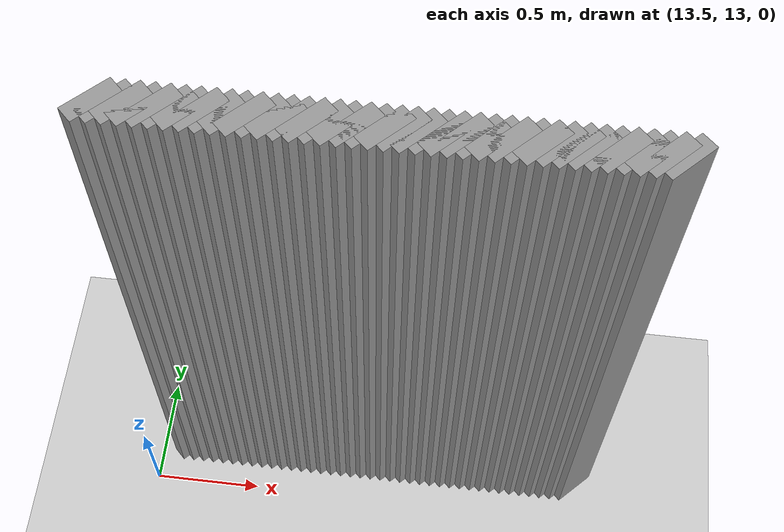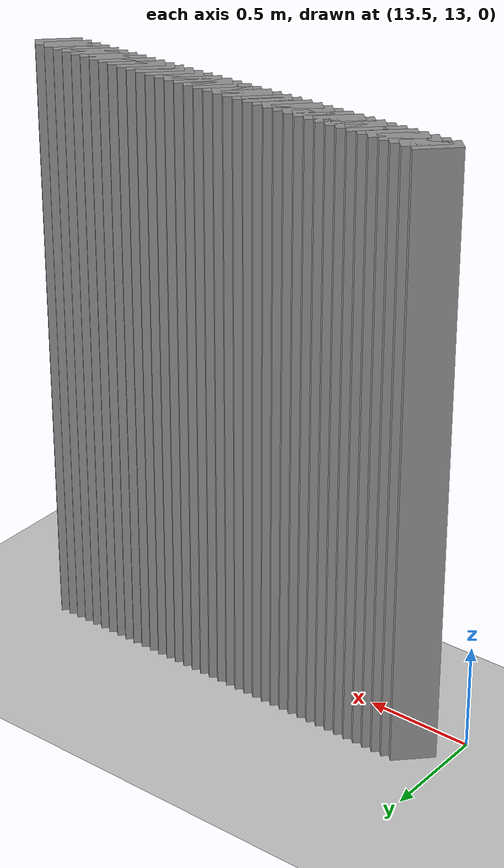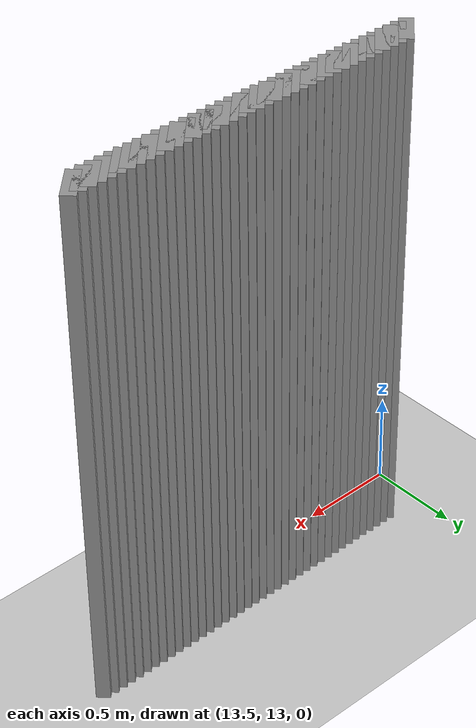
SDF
<sdf version="1.5">
 <world name="default">
  <include><uri>model://ground_plane</uri></include>
  <include><uri>model://sun</uri></include>
  <model name="grey_wall_1931">
   <static>1</static>
   <link name="link">
    <pose>13.65 13.2  1.4 0 0 -0.785398163397</pose>
    <collision name="collision"><geometry><box><size>0.0707106781187 .2  2.8</size></box></geometry></collision>
    <visual name="visual">
     <cast_shadows>0</cast_shadows>
     <geometry><box><size>0.0707106781187 .2  2.8</size></box></geometry>
     <material>
      <script>
       <uri>model://grey_wall/materials/scripts</uri>
       <uri>model://grey_wall/materials/textures</uri>
       <name>vrc/grey_wall</name>
      </script>
     </material>
    </visual>
   </link>
  </model>
  <model name="grey_wall_1932">
   <static>1</static>
   <link name="link">
    <pose>13.7 13.2  1.4 0 0 -0.785398163397</pose>
    <collision name="collision"><geometry><box><size>0.0707106781187 .2  2.8</size></box></geometry></collision>
    <visual name="visual">
     <cast_shadows>0</cast_shadows>
     <geometry><box><size>0.0707106781187 .2  2.8</size></box></geometry>
     <material>
      <script>
       <uri>model://grey_wall/materials/scripts</uri>
       <uri>model://grey_wall/materials/textures</uri>
       <name>vrc/grey_wall</name>
      </script>
     </material>
    </visual>
   </link>
  </model>
  <model name="grey_wall_1933">
   <static>1</static>
   <link name="link">
    <pose>13.75 13.2  1.4 0 0 -0.785398163397</pose>
    <collision name="collision"><geometry><box><size>0.0707106781187 .2  2.8</size></box></geometry></collision>
    <visual name="visual">
     <cast_shadows>0</cast_shadows>
     <geometry><box><size>0.0707106781187 .2  2.8</size></box></geometry>
     <material>
      <script>
       <uri>model://grey_wall/materials/scripts</uri>
       <uri>model://grey_wall/materials/textures</uri>
       <name>vrc/grey_wall</name>
      </script>
     </material>
    </visual>
   </link>
  </model>
  <model name="grey_wall_1934">
   <static>1</static>
   <link name="link">
    <pose>13.8 13.2  1.4 0 0 -0.785398163397</pose>
    <collision name="collision"><geometry><box><size>0.0707106781187 .2  2.8</size></box></geometry></collision>
    <visual name="visual">
     <cast_shadows>0</cast_shadows>
     <geometry><box><size>0.0707106781187 .2  2.8</size></box></geometry>
     <material>
      <script>
       <uri>model://grey_wall/materials/scripts</uri>
       <uri>model://grey_wall/materials/textures</uri>
       <name>vrc/grey_wall</name>
      </script>
     </material>
    </visual>
   </link>
  </model>
  <model name="grey_wall_1935">
   <static>1</static>
   <link name="link">
    <pose>13.85 13.2  1.4 0 0 -0.785398163397</pose>
    <collision name="collision"><geometry><box><size>0.0707106781187 .2  2.8</size></box></geometry></collision>
    <visual name="visual">
     <cast_shadows>0</cast_shadows>
     <geometry><box><size>0.0707106781187 .2  2.8</size></box></geometry>
     <material>
      <script>
       <uri>model://grey_wall/materials/scripts</uri>
       <uri>model://grey_wall/materials/textures</uri>
       <name>vrc/grey_wall</name>
      </script>
     </material>
    </visual>
   </link>
  </model>
  <model name="grey_wall_1936">
   <static>1</static>
   <link name="link">
    <pose>13.9 13.2  1.4 0 0 -0.785398163397</pose>
    <collision name="collision"><geometry><box><size>0.0707106781187 .2  2.8</size></box></geometry></collision>
    <visual name="visual">
     <cast_shadows>0</cast_shadows>
     <geometry><box><size>0.0707106781187 .2  2.8</size></box></geometry>
     <material>
      <script>
       <uri>model://grey_wall/materials/scripts</uri>
       <uri>model://grey_wall/materials/textures</uri>
       <name>vrc/grey_wall</name>
      </script>
     </material>
    </visual>
   </link>
  </model>
  <model name="grey_wall_1937">
   <static>1</static>
   <link name="link">
    <pose>13.95 13.2  1.4 0 0 -0.785398163397</pose>
    <collision name="collision"><geometry><box><size>0.0707106781187 .2  2.8</size></box></geometry></collision>
    <visual name="visual">
     <cast_shadows>0</cast_shadows>
     <geometry><box><size>0.0707106781187 .2  2.8</size></box></geometry>
     <material>
      <script>
       <uri>model://grey_wall/materials/scripts</uri>
       <uri>model://grey_wall/materials/textures</uri>
       <name>vrc/grey_wall</name>
      </script>
     </material>
    </visual>
   </link>
  </model>
  <model name="grey_wall_1938">
   <static>1</static>
   <link name="link">
    <pose>14.0 13.2  1.4 0 0 -0.785398163397</pose>
    <collision name="collision"><geometry><box><size>0.0707106781187 .2  2.8</size></box></geometry></collision>
    <visual name="visual">
     <cast_shadows>0</cast_shadows>
     <geometry><box><size>0.0707106781187 .2  2.8</size></box></geometry>
     <material>
      <script>
       <uri>model://grey_wall/materials/scripts</uri>
       <uri>model://grey_wall/materials/textures</uri>
       <name>vrc/grey_wall</name>
      </script>
     </material>
    </visual>
   </link>
  </model>
  <model name="grey_wall_1939">
   <static>1</static>
   <link name="link">
    <pose>14.05 13.2  1.4 0 0 -0.785398163397</pose>
    <collision name="collision"><geometry><box><size>0.0707106781187 .2  2.8</size></box></geometry></collision>
    <visual name="visual">
     <cast_shadows>0</cast_shadows>
     <geometry><box><size>0.0707106781187 .2  2.8</size></box></geometry>
     <material>
      <script>
       <uri>model://grey_wall/materials/scripts</uri>
       <uri>model://grey_wall/materials/textures</uri>
       <name>vrc/grey_wall</name>
      </script>
     </material>
    </visual>
   </link>
  </model>
  <model name="grey_wall_1940">
   <static>1</static>
   <link name="link">
    <pose>14.1 13.2  1.4 0 0 -0.785398163397</pose>
    <collision name="collision"><geometry><box><size>0.0707106781187 .2  2.8</size></box></geometry></collision>
    <visual name="visual">
     <cast_shadows>0</cast_shadows>
     <geometry><box><size>0.0707106781187 .2  2.8</size></box></geometry>
     <material>
      <script>
       <uri>model://grey_wall/materials/scripts</uri>
       <uri>model://grey_wall/materials/textures</uri>
       <name>vrc/grey_wall</name>
      </script>
     </material>
    </visual>
   </link>
  </model>
  <model name="grey_wall_1941">
   <static>1</static>
   <link name="link">
    <pose>14.15 13.2  1.4 0 0 -0.785398163397</pose>
    <collision name="collision"><geometry><box><size>0.0707106781187 .2  2.8</size></box></geometry></collision>
    <visual name="visual">
     <cast_shadows>0</cast_shadows>
     <geometry><box><size>0.0707106781187 .2  2.8</size></box></geometry>
     <material>
      <script>
       <uri>model://grey_wall/materials/scripts</uri>
       <uri>model://grey_wall/materials/textures</uri>
       <name>vrc/grey_wall</name>
      </script>
     </material>
    </visual>
   </link>
  </model>
  <model name="grey_wall_1942">
   <static>1</static>
   <link name="link">
    <pose>14.2 13.2  1.4 0 0 -0.785398163397</pose>
    <collision name="collision"><geometry><box><size>0.0707106781187 .2  2.8</size></box></geometry></collision>
    <visual name="visual">
     <cast_shadows>0</cast_shadows>
     <geometry><box><size>0.0707106781187 .2  2.8</size></box></geometry>
     <material>
      <script>
       <uri>model://grey_wall/materials/scripts</uri>
       <uri>model://grey_wall/materials/textures</uri>
       <name>vrc/grey_wall</name>
      </script>
     </material>
    </visual>
   </link>
  </model>
  <model name="grey_wall_1943">
   <static>1</static>
   <link name="link">
    <pose>14.25 13.2  1.4 0 0 -0.785398163397</pose>
    <collision name="collision"><geometry><box><size>0.0707106781187 .2  2.8</size></box></geometry></collision>
    <visual name="visual">
     <cast_shadows>0</cast_shadows>
     <geometry><box><size>0.0707106781187 .2  2.8</size></box></geometry>
     <material>
      <script>
       <uri>model://grey_wall/materials/scripts</uri>
       <uri>model://grey_wall/materials/textures</uri>
       <name>vrc/grey_wall</name>
      </script>
     </material>
    </visual>
   </link>
  </model>
  <model name="grey_wall_1944">
   <static>1</static>
   <link name="link">
    <pose>14.3 13.2  1.4 0 0 -0.785398163397</pose>
    <collision name="collision"><geometry><box><size>0.0707106781187 .2  2.8</size></box></geometry></collision>
    <visual name="visual">
     <cast_shadows>0</cast_shadows>
     <geometry><box><size>0.0707106781187 .2  2.8</size></box></geometry>
     <material>
      <script>
       <uri>model://grey_wall/materials/scripts</uri>
       <uri>model://grey_wall/materials/textures</uri>
       <name>vrc/grey_wall</name>
      </script>
     </material>
    </visual>
   </link>
  </model>
  <model name="grey_wall_1945">
   <static>1</static>
   <link name="link">
    <pose>14.35 13.2  1.4 0 0 -0.785398163397</pose>
    <collision name="collision"><geometry><box><size>0.0707106781187 .2  2.8</size></box></geometry></collision>
    <visual name="visual">
     <cast_shadows>0</cast_shadows>
     <geometry><box><size>0.0707106781187 .2  2.8</size></box></geometry>
     <material>
      <script>
       <uri>model://grey_wall/materials/scripts</uri>
       <uri>model://grey_wall/materials/textures</uri>
       <name>vrc/grey_wall</name>
      </script>
     </material>
    </visual>
   </link>
  </model>
  <model name="grey_wall_1946">
   <static>1</static>
   <link name="link">
    <pose>14.4 13.2  1.4 0 0 -0.785398163397</pose>
    <collision name="collision"><geometry><box><size>0.0707106781187 .2  2.8</size></box></geometry></collision>
    <visual name="visual">
     <cast_shadows>0</cast_shadows>
     <geometry><box><size>0.0707106781187 .2  2.8</size></box></geometry>
     <material>
      <script>
       <uri>model://grey_wall/materials/scripts</uri>
       <uri>model://grey_wall/materials/textures</uri>
       <name>vrc/grey_wall</name>
      </script>
     </material>
    </visual>
   </link>
  </model>
  <model name="grey_wall_1947">
   <static>1</static>
   <link name="link">
    <pose>14.45 13.2  1.4 0 0 -0.785398163397</pose>
    <collision name="collision"><geometry><box><size>0.0707106781187 .2  2.8</size></box></geometry></collision>
    <visual name="visual">
     <cast_shadows>0</cast_shadows>
     <geometry><box><size>0.0707106781187 .2  2.8</size></box></geometry>
     <material>
      <script>
       <uri>model://grey_wall/materials/scripts</uri>
       <uri>model://grey_wall/materials/textures</uri>
       <name>vrc/grey_wall</name>
      </script>
     </material>
    </visual>
   </link>
  </model>
  <model name="grey_wall_1948">
   <static>1</static>
   <link name="link">
    <pose>14.5 13.2  1.4 0 0 -0.785398163397</pose>
    <collision name="collision"><geometry><box><size>0.0707106781187 .2  2.8</size></box></geometry></collision>
    <visual name="visual">
     <cast_shadows>0</cast_shadows>
     <geometry><box><size>0.0707106781187 .2  2.8</size></box></geometry>
     <material>
      <script>
       <uri>model://grey_wall/materials/scripts</uri>
       <uri>model://grey_wall/materials/textures</uri>
       <name>vrc/grey_wall</name>
      </script>
     </material>
    </visual>
   </link>
  </model>
  <model name="grey_wall_1949">
   <static>1</static>
   <link name="link">
    <pose>14.55 13.2  1.4 0 0 -0.785398163397</pose>
    <collision name="collision"><geometry><box><size>0.0707106781187 .2  2.8</size></box></geometry></collision>
    <visual name="visual">
     <cast_shadows>0</cast_shadows>
     <geometry><box><size>0.0707106781187 .2  2.8</size></box></geometry>
     <material>
      <script>
       <uri>model://grey_wall/materials/scripts</uri>
       <uri>model://grey_wall/materials/textures</uri>
       <name>vrc/grey_wall</name>
      </script>
     </material>
    </visual>
   </link>
  </model>
  <model name="grey_wall_1950">
   <static>1</static>
   <link name="link">
    <pose>14.6 13.2  1.4 0 0 -0.785398163397</pose>
    <collision name="collision"><geometry><box><size>0.0707106781187 .2  2.8</size></box></geometry></collision>
    <visual name="visual">
     <cast_shadows>0</cast_shadows>
     <geometry><box><size>0.0707106781187 .2  2.8</size></box></geometry>
     <material>
      <script>
       <uri>model://grey_wall/materials/scripts</uri>
       <uri>model://grey_wall/materials/textures</uri>
       <name>vrc/grey_wall</name>
      </script>
     </material>
    </visual>
   </link>
  </model>
  <model name="grey_wall_1951">
   <static>1</static>
   <link name="link">
    <pose>14.65 13.2  1.4 0 0 -0.785398163397</pose>
    <collision name="collision"><geometry><box><size>0.0707106781187 .2  2.8</size></box></geometry></collision>
    <visual name="visual">
     <cast_shadows>0</cast_shadows>
     <geometry><box><size>0.0707106781187 .2  2.8</size></box></geometry>
     <material>
      <script>
       <uri>model://grey_wall/materials/scripts</uri>
       <uri>model://grey_wall/materials/textures</uri>
       <name>vrc/grey_wall</name>
      </script>
     </material>
    </visual>
   </link>
  </model>
  <model name="grey_wall_1952">
   <static>1</static>
   <link name="link">
    <pose>14.7 13.2  1.4 0 0 -0.785398163397</pose>
    <collision name="collision"><geometry><box><size>0.0707106781187 .2  2.8</size></box></geometry></collision>
    <visual name="visual">
     <cast_shadows>0</cast_shadows>
     <geometry><box><size>0.0707106781187 .2  2.8</size></box></geometry>
     <material>
      <script>
       <uri>model://grey_wall/materials/scripts</uri>
       <uri>model://grey_wall/materials/textures</uri>
       <name>vrc/grey_wall</name>
      </script>
     </material>
    </visual>
   </link>
  </model>
  <model name="grey_wall_1953">
   <static>1</static>
   <link name="link">
    <pose>14.75 13.2  1.4 0 0 -0.785398163397</pose>
    <collision name="collision"><geometry><box><size>0.0707106781187 .2  2.8</size></box></geometry></collision>
    <visual name="visual">
     <cast_shadows>0</cast_shadows>
     <geometry><box><size>0.0707106781187 .2  2.8</size></box></geometry>
     <material>
      <script>
       <uri>model://grey_wall/materials/scripts</uri>
       <uri>model://grey_wall/materials/textures</uri>
       <name>vrc/grey_wall</name>
      </script>
     </material>
    </visual>
   </link>
  </model>
  <model name="grey_wall_1954">
   <static>1</static>
   <link name="link">
    <pose>14.8 13.2  1.4 0 0 -0.785398163397</pose>
    <collision name="collision"><geometry><box><size>0.0707106781187 .2  2.8</size></box></geometry></collision>
    <visual name="visual">
     <cast_shadows>0</cast_shadows>
     <geometry><box><size>0.0707106781187 .2  2.8</size></box></geometry>
     <material>
      <script>
       <uri>model://grey_wall/materials/scripts</uri>
       <uri>model://grey_wall/materials/textures</uri>
       <name>vrc/grey_wall</name>
      </script>
     </material>
    </visual>
   </link>
  </model>
  <model name="grey_wall_1955">
   <static>1</static>
   <link name="link">
    <pose>14.85 13.2  1.4 0 0 -0.785398163397</pose>
    <collision name="collision"><geometry><box><size>0.0707106781187 .2  2.8</size></box></geometry></collision>
    <visual name="visual">
     <cast_shadows>0</cast_shadows>
     <geometry><box><size>0.0707106781187 .2  2.8</size></box></geometry>
     <material>
      <script>
       <uri>model://grey_wall/materials/scripts</uri>
       <uri>model://grey_wall/materials/textures</uri>
       <name>vrc/grey_wall</name>
      </script>
     </material>
    </visual>
   </link>
  </model>
  <model name="grey_wall_1956">
   <static>1</static>
   <link name="link">
    <pose>14.9 13.2  1.4 0 0 -0.785398163397</pose>
    <collision name="collision"><geometry><box><size>0.0707106781187 .2  2.8</size></box></geometry></collision>
    <visual name="visual">
     <cast_shadows>0</cast_shadows>
     <geometry><box><size>0.0707106781187 .2  2.8</size></box></geometry>
     <material>
      <script>
       <uri>model://grey_wall/materials/scripts</uri>
       <uri>model://grey_wall/materials/textures</uri>
       <name>vrc/grey_wall</name>
      </script>
     </material>
    </visual>
   </link>
  </model>
  <model name="grey_wall_1957">
   <static>1</static>
   <link name="link">
    <pose>14.95 13.2  1.4 0 0 -0.785398163397</pose>
    <collision name="collision"><geometry><box><size>0.0707106781187 .2  2.8</size></box></geometry></collision>
    <visual name="visual">
     <cast_shadows>0</cast_shadows>
     <geometry><box><size>0.0707106781187 .2  2.8</size></box></geometry>
     <material>
      <script>
       <uri>model://grey_wall/materials/scripts</uri>
       <uri>model://grey_wall/materials/textures</uri>
       <name>vrc/grey_wall</name>
      </script>
     </material>
    </visual>
   </link>
  </model>
  <model name="grey_wall_1958">
   <static>1</static>
   <link name="link">
    <pose>15.0 13.2  1.4 0 0 -0.785398163397</pose>
    <collision name="collision"><geometry><box><size>0.0707106781187 .2  2.8</size></box></geometry></collision>
    <visual name="visual">
     <cast_shadows>0</cast_shadows>
     <geometry><box><size>0.0707106781187 .2  2.8</size></box></geometry>
     <material>
      <script>
       <uri>model://grey_wall/materials/scripts</uri>
       <uri>model://grey_wall/materials/textures</uri>
       <name>vrc/grey_wall</name>
      </script>
     </material>
    </visual>
   </link>
  </model>
  <model name="grey_wall_1959">
   <static>1</static>
   <link name="link">
    <pose>15.05 13.2  1.4 0 0 -0.785398163397</pose>
    <collision name="collision"><geometry><box><size>0.0707106781187 .2  2.8</size></box></geometry></collision>
    <visual name="visual">
     <cast_shadows>0</cast_shadows>
     <geometry><box><size>0.0707106781187 .2  2.8</size></box></geometry>
     <material>
      <script>
       <uri>model://grey_wall/materials/scripts</uri>
       <uri>model://grey_wall/materials/textures</uri>
       <name>vrc/grey_wall</name>
      </script>
     </material>
    </visual>
   </link>
  </model>
  <model name="grey_wall_1960">
   <static>1</static>
   <link name="link">
    <pose>15.1 13.2  1.4 0 0 -0.785398163397</pose>
    <collision name="collision"><geometry><box><size>0.0707106781187 .2  2.8</size></box></geometry></collision>
    <visual name="visual">
     <cast_shadows>0</cast_shadows>
     <geometry><box><size>0.0707106781187 .2  2.8</size></box></geometry>
     <material>
      <script>
       <uri>model://grey_wall/materials/scripts</uri>
       <uri>model://grey_wall/materials/textures</uri>
       <name>vrc/grey_wall</name>
      </script>
     </material>
    </visual>
   </link>
  </model>
  <model name="grey_wall_1961">
   <static>1</static>
   <link name="link">
    <pose>15.15 13.2  1.4 0 0 -0.785398163397</pose>
    <collision name="collision"><geometry><box><size>0.0707106781187 .2  2.8</size></box></geometry></collision>
    <visual name="visual">
     <cast_shadows>0</cast_shadows>
     <geometry><box><size>0.0707106781187 .2  2.8</size></box></geometry>
     <material>
      <script>
       <uri>model://grey_wall/materials/scripts</uri>
       <uri>model://grey_wall/materials/textures</uri>
       <name>vrc/grey_wall</name>
      </script>
     </material>
    </visual>
   </link>
  </model>
  <model name="grey_wall_1962">
   <static>1</static>
   <link name="link">
    <pose>15.2 13.2  1.4 0 0 -0.785398163397</pose>
    <collision name="collision"><geometry><box><size>0.0707106781187 .2  2.8</size></box></geometry></collision>
    <visual name="visual">
     <cast_shadows>0</cast_shadows>
     <geometry><box><size>0.0707106781187 .2  2.8</size></box></geometry>
     <material>
      <script>
       <uri>model://grey_wall/materials/scripts</uri>
       <uri>model://grey_wall/materials/textures</uri>
       <name>vrc/grey_wall</name>
      </script>
     </material>
    </visual>
   </link>
  </model>
  <model name="grey_wall_1963">
   <static>1</static>
   <link name="link">
    <pose>15.25 13.2  1.4 0 0 -0.785398163397</pose>
    <collision name="collision"><geometry><box><size>0.0707106781187 .2  2.8</size></box></geometry></collision>
    <visual name="visual">
     <cast_shadows>0</cast_shadows>
     <geometry><box><size>0.0707106781187 .2  2.8</size></box></geometry>
     <material>
      <script>
       <uri>model://grey_wall/materials/scripts</uri>
       <uri>model://grey_wall/materials/textures</uri>
       <name>vrc/grey_wall</name>
      </script>
     </material>
    </visual>
   </link>
  </model>
  <model name="grey_wall_1964">
   <static>1</static>
   <link name="link">
    <pose>15.3 13.2  1.4 0 0 -0.785398163397</pose>
    <collision name="collision"><geometry><box><size>0.0707106781187 .2  2.8</size></box></geometry></collision>
    <visual name="visual">
     <cast_shadows>0</cast_shadows>
     <geometry><box><size>0.0707106781187 .2  2.8</size></box></geometry>
     <material>
      <script>
       <uri>model://grey_wall/materials/scripts</uri>
       <uri>model://grey_wall/materials/textures</uri>
       <name>vrc/grey_wall</name>
      </script>
     </material>
    </visual>
   </link>
  </model>
  <model name="grey_wall_1965">
   <static>1</static>
   <link name="link">
    <pose>15.35 13.2  1.4 0 0 -0.785398163397</pose>
    <collision name="collision"><geometry><box><size>0.0707106781187 .2  2.8</size></box></geometry></collision>
    <visual name="visual">
     <cast_shadows>0</cast_shadows>
     <geometry><box><size>0.0707106781187 .2  2.8</size></box></geometry>
     <material>
      <script>
       <uri>model://grey_wall/materials/scripts</uri>
       <uri>model://grey_wall/materials/textures</uri>
       <name>vrc/grey_wall</name>
      </script>
     </material>
    </visual>
   </link>
  </model>
  <model name="grey_wall_1966">
   <static>1</static>
   <link name="link">
    <pose>15.4 13.2  1.4 0 0 -0.785398163397</pose>
    <collision name="collision"><geometry><box><size>0.0707106781187 .2  2.8</size></box></geometry></collision>
    <visual name="visual">
     <cast_shadows>0</cast_shadows>
     <geometry><box><size>0.0707106781187 .2  2.8</size></box></geometry>
     <material>
      <script>
       <uri>model://grey_wall/materials/scripts</uri>
       <uri>model://grey_wall/materials/textures</uri>
       <name>vrc/grey_wall</name>
      </script>
     </material>
    </visual>
   </link>
  </model>
  <model name="grey_wall_1967">
   <static>1</static>
   <link name="link">
    <pose>15.45 13.2  1.4 0 0 -0.785398163397</pose>
    <collision name="collision"><geometry><box><size>0.0707106781187 .2  2.8</size></box></geometry></collision>
    <visual name="visual">
     <cast_shadows>0</cast_shadows>
     <geometry><box><size>0.0707106781187 .2  2.8</size></box></geometry>
     <material>
      <script>
       <uri>model://grey_wall/materials/scripts</uri>
       <uri>model://grey_wall/materials/textures</uri>
       <name>vrc/grey_wall</name>
      </script>
     </material>
    </visual>
   </link>
  </model>
  <model name="grey_wall_1968">
   <static>1</static>
   <link name="link">
    <pose>15.5 13.2  1.4 0 0 -0.785398163397</pose>
    <collision name="collision"><geometry><box><size>0.0707106781187 .2  2.8</size></box></geometry></collision>
    <visual name="visual">
     <cast_shadows>0</cast_shadows>
     <geometry><box><size>0.0707106781187 .2  2.8</size></box></geometry>
     <material>
      <script>
       <uri>model://grey_wall/materials/scripts</uri>
       <uri>model://grey_wall/materials/textures</uri>
       <name>vrc/grey_wall</name>
      </script>
     </material>
    </visual>
   </link>
  </model>
  <model name="grey_wall_1969">
   <static>1</static>
   <link name="link">
    <pose>15.55 13.2  1.4 0 0 -0.785398163397</pose>
    <collision name="collision"><geometry><box><size>0.0707106781187 .2  2.8</size></box></geometry></collision>
    <visual name="visual">
     <cast_shadows>0</cast_shadows>
     <geometry><box><size>0.0707106781187 .2  2.8</size></box></geometry>
     <material>
      <script>
       <uri>model://grey_wall/materials/scripts</uri>
       <uri>model://grey_wall/materials/textures</uri>
       <name>vrc/grey_wall</name>
      </script>
     </material>
    </visual>
   </link>
  </model>
 </world>
</sdf>
